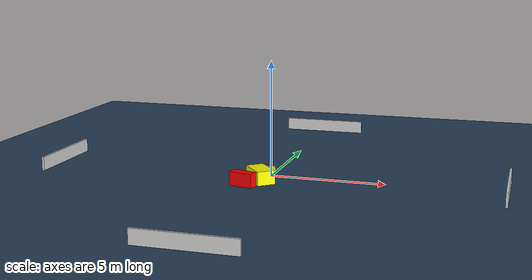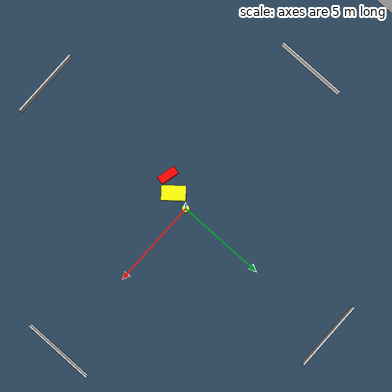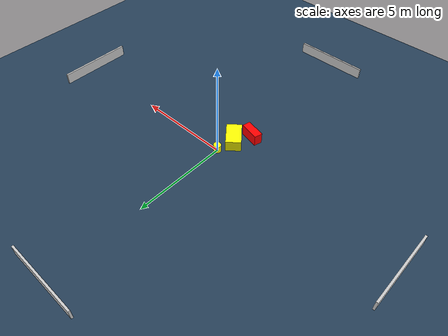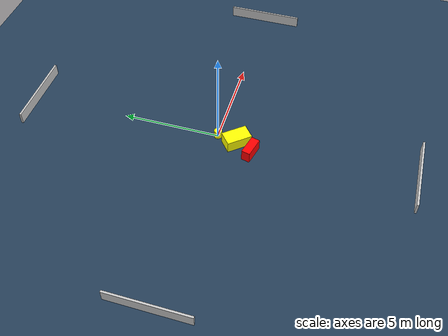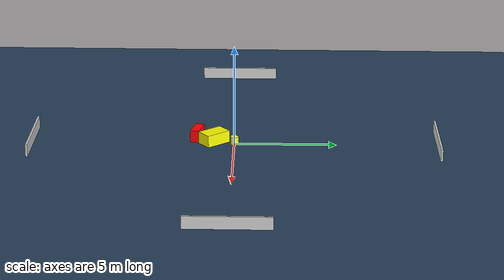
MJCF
<?xml version="1.0" ?>
<mujoco model="generated_environment">
  <option timestep="0.01" integrator="RK4" cone="elliptic"/>
  <default>
    <geom density="1"/>
  </default>
  <asset>
    <texture builtin="gradient" height="3072" name="skybox" rgb1="0.3 0.5 0.7" rgb2="0 0 0" type="skybox" width="512"/>
    <texture builtin="checker" height="300" name="groundplane" rgb1="0.2 0.3 0.4" rgb2="0.1 0.2 0.3" type="2d" width="300"/>
    <material name="groundplane" reflectance="0.2" texrepeat="5 5" texture="groundplane"/>
  </asset>
  <worldbody>
    <light dir="0 0 -1" directional="true" pos="0 0 1.5"/>
    <geom condim="3" friction="0.5 0.005 0.001" material="groundplane" name="floor" pos="0 0 0" size="0 0 0.05" type="plane"/>
    <body name="walls">
      <geom name="wall_1" condim="4" pos="-10.0 0.0 0.3" rgba="0.800000011920929 0.800000011920929 0.800000011920929 1.0" size="0.05 2.0 0.3" type="box"/>
      <geom name="wall_2" condim="4" pos="10.0 0.0 0.3" rgba="0.800000011920929 0.800000011920929 0.800000011920929 1.0" size="0.05 2.0 0.3" type="box"/>
      <geom name="wall_3" condim="4" pos="0.0 -10.0 0.3" rgba="0.800000011920929 0.800000011920929 0.800000011920929 1.0" size="2.0 0.05 0.3" type="box"/>
      <geom name="wall_4" condim="4" pos="0.0 10.0 0.3" rgba="0.800000011920929 0.800000011920929 0.800000011920929 1.0" size="2.0 0.05 0.3" type="box"/>
    </body>
    <body name="robot">
      <joint name="joint_x" type="slide" pos="0 0 0" axis="1 0 0"/>
      <joint name="joint_y" type="slide" pos="0 0 0" axis="0 1 0"/>
      <geom name="robot" type="cylinder" pos="0.0 0.0 0.2" size="0.2 0.2 0.0" mass="5.0" friction="1.0 0.005 0.0001" condim="4" rgba="1.0 1.0 0.0 1.0"/>
    </body>
    <body name="obstacle_1_movable">
      <geom name="obstacle_1_movable" condim="4" pos="-0.17557513294619945 -1.018590162933358 0.3" euler="0 0 309.69558221152295" friction="0.0 0.005 0.001" rgba="1.0 1.0 0.0 1.0" size="0.6531556133754164 0.39568907109890283 0.3" type="box" mass="0.1"/>
      <joint type="free"/>
    </body>
    <body name="obstacle_2_static">
      <geom name="obstacle_2_static" condim="4" pos="-0.6806702120507194 -1.8643127968664894 0.3" euler="0 0 346.210359851442" friction="0.0 0.005 0.001" rgba="1.0 0.0 0.0 1.0" size="0.5240872476455456 0.21853766946774078 0.3" type="box"/>
    </body>
  </worldbody>
  <actuator>
    <motor name="actuator_x" joint="joint_x" gear="1" ctrlrange="-1 1"/>
    <motor name="actuator_y" joint="joint_y" gear="1" ctrlrange="-1 1"/>
  </actuator>
</mujoco>
